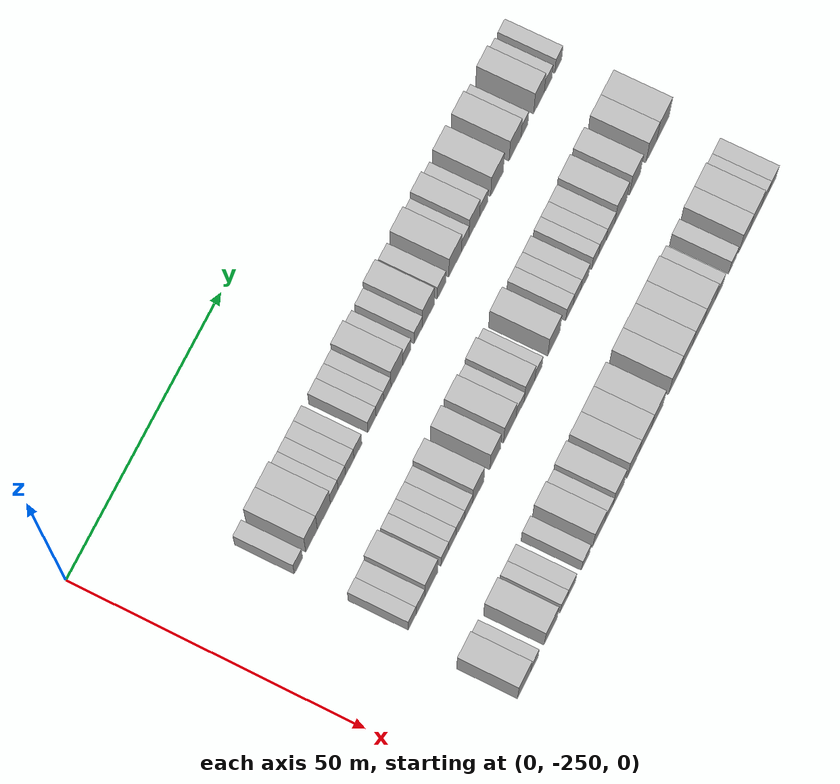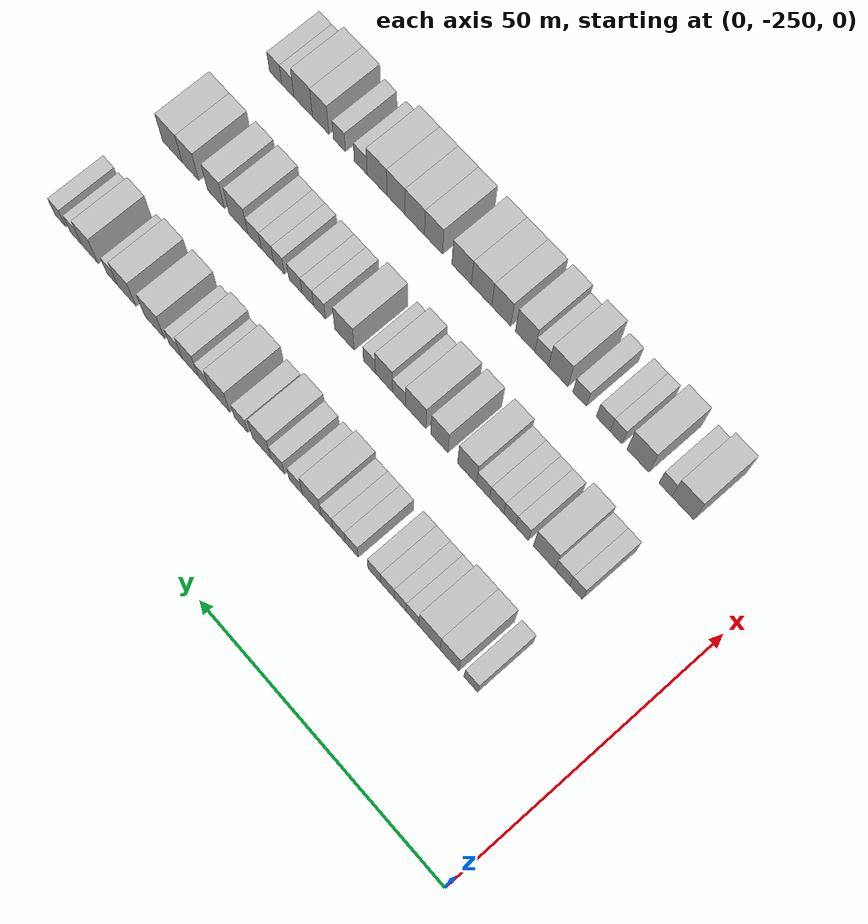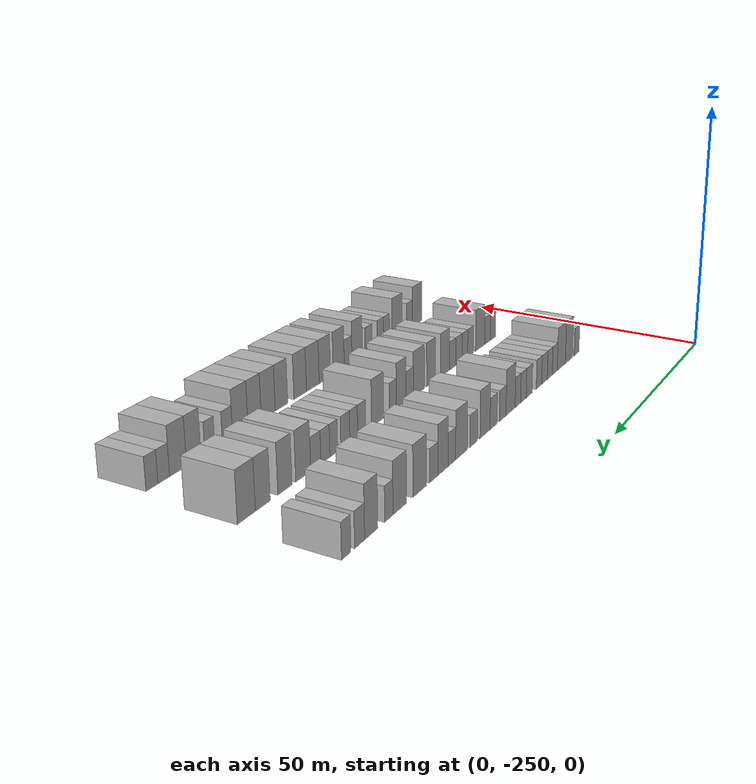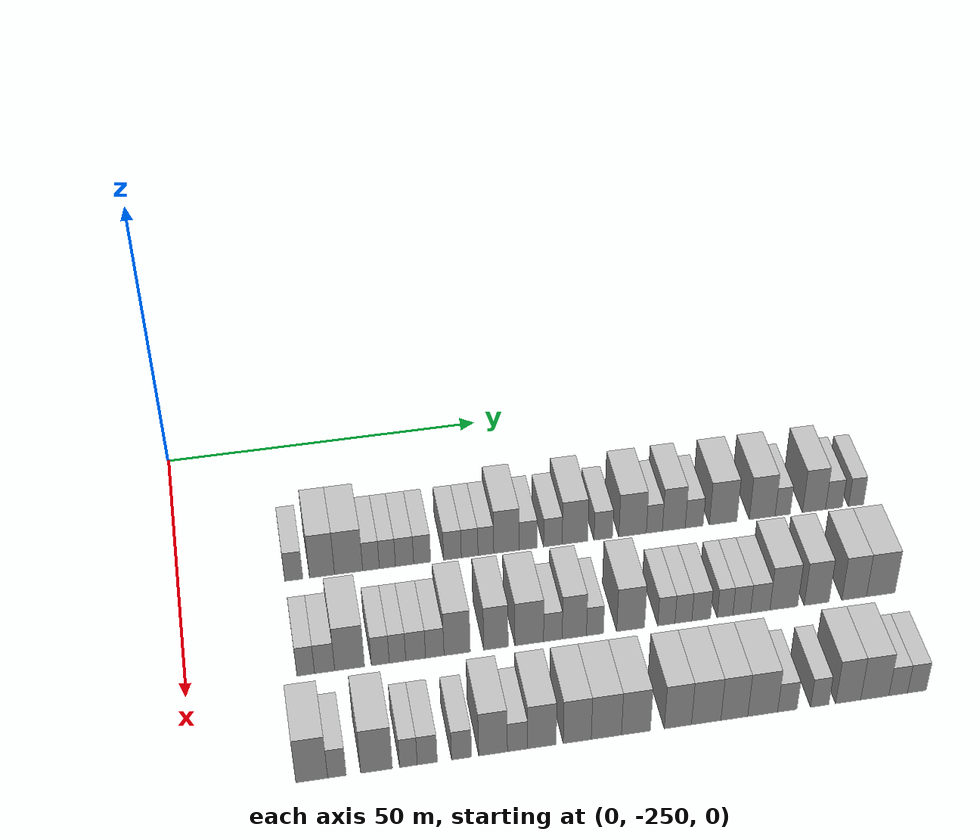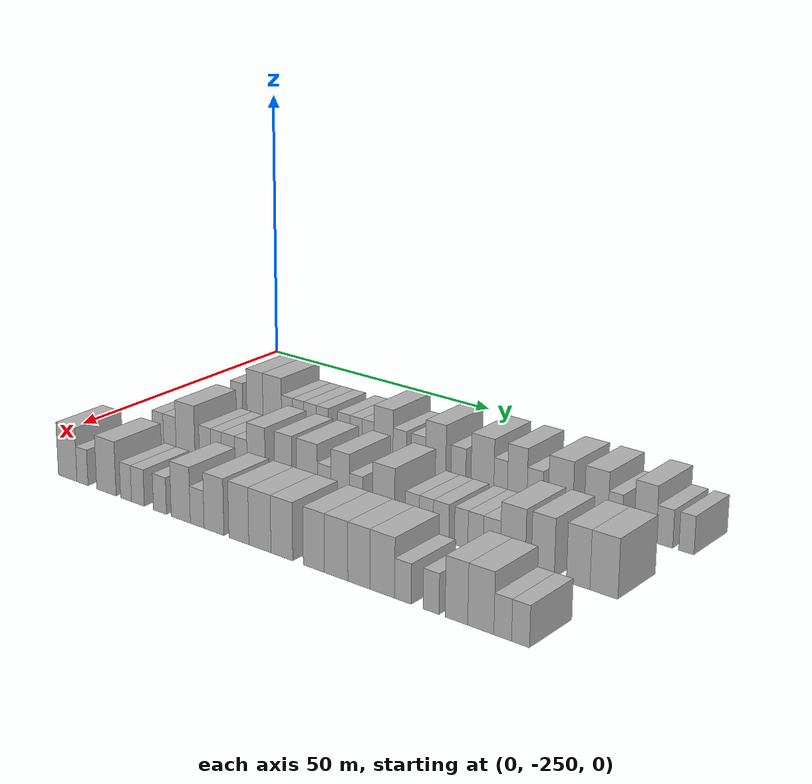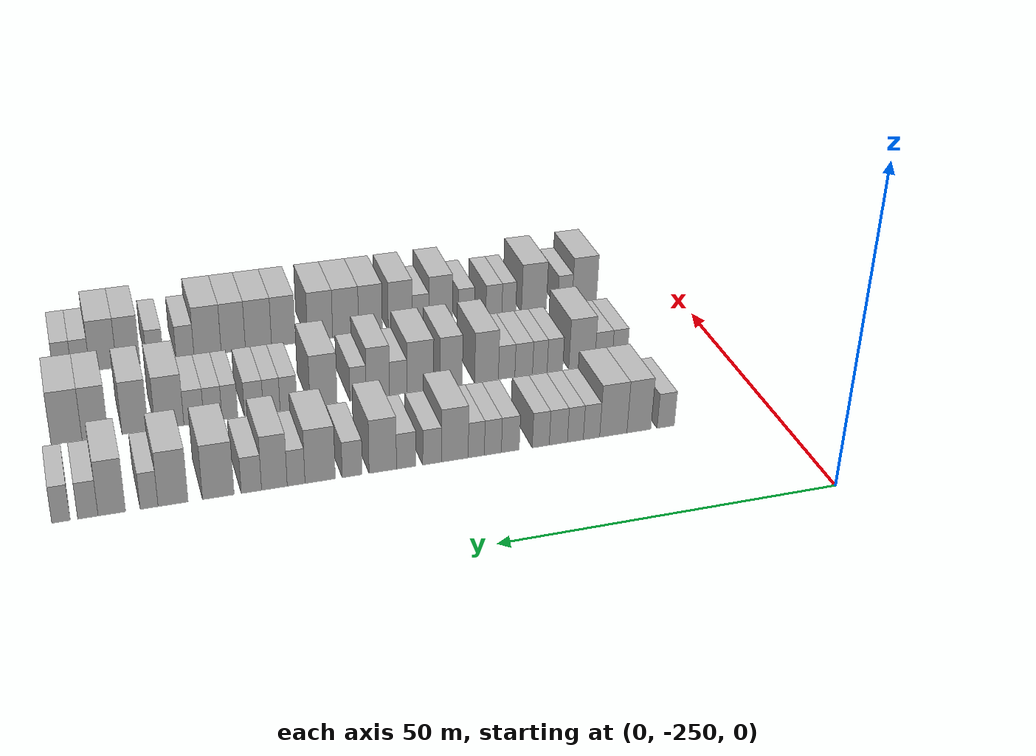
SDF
<sdf version="1.6">
 <world name="default">
  <model name="building_1">
   <static>1</static>
   <pose>25.0000 -232.6231 0 0.000000 0.000000 0.000000</pose>
   <link name="link">
    <pose>0 0 3.00 0 0 0</pose>
    <collision name="collision"><geometry><box><size>10.0000 2.7538 6.0000</size></box></geometry></collision>
    <visual name="visual">
     <cast_shadows>0</cast_shadows>
     <geometry><box><size>10.0000 2.7538 6.0000</size></box></geometry>
     <material>
      <script>
       <uri>model://HANNAS_wall/materials/scripts</uri>
       <uri>model://HANNAS_wall/materials/textures</uri>
       <name>vrc/HANNAS_wall</name>
      </script>
     </material>
    </visual>
   </link>
  </model>
  <model name="building_2">
   <static>1</static>
   <pose>25.0000 -228.3459 0 0.000000 0.000000 0.000000</pose>
   <link name="link">
    <pose>0 0 4.50 0 0 0</pose>
    <collision name="collision"><geometry><box><size>10.0000 3.8005 9.0000</size></box></geometry></collision>
    <visual name="visual">
     <cast_shadows>0</cast_shadows>
     <geometry><box><size>10.0000 3.8005 9.0000</size></box></geometry>
     <material>
      <script>
       <uri>model://HANNAS_wall/materials/scripts</uri>
       <uri>model://HANNAS_wall/materials/textures</uri>
       <name>vrc/HANNAS_wall</name>
      </script>
     </material>
    </visual>
   </link>
  </model>
  <model name="building_3">
   <static>1</static>
   <pose>25.0000 -224.2984 0 0.000000 0.000000 0.000000</pose>
   <link name="link">
    <pose>0 0 4.50 0 0 0</pose>
    <collision name="collision"><geometry><box><size>10.0000 4.2945 9.0000</size></box></geometry></collision>
    <visual name="visual">
     <cast_shadows>0</cast_shadows>
     <geometry><box><size>10.0000 4.2945 9.0000</size></box></geometry>
     <material>
      <script>
       <uri>model://HANNAS_wall/materials/scripts</uri>
       <uri>model://HANNAS_wall/materials/textures</uri>
       <name>vrc/HANNAS_wall</name>
      </script>
     </material>
    </visual>
   </link>
  </model>
  <model name="building_4">
   <static>1</static>
   <pose>25.0000 -220.8704 0 0.000000 0.000000 0.000000</pose>
   <link name="link">
    <pose>0 0 3.00 0 0 0</pose>
    <collision name="collision"><geometry><box><size>10.0000 2.5615 6.0000</size></box></geometry></collision>
    <visual name="visual">
     <cast_shadows>0</cast_shadows>
     <geometry><box><size>10.0000 2.5615 6.0000</size></box></geometry>
     <material>
      <script>
       <uri>model://HANNAS_wall/materials/scripts</uri>
       <uri>model://HANNAS_wall/materials/textures</uri>
       <name>vrc/HANNAS_wall</name>
      </script>
     </material>
    </visual>
   </link>
  </model>
  <model name="building_5">
   <static>1</static>
   <pose>25.0000 -218.3513 0 0.000000 0.000000 0.000000</pose>
   <link name="link">
    <pose>0 0 3.00 0 0 0</pose>
    <collision name="collision"><geometry><box><size>10.0000 2.4766 6.0000</size></box></geometry></collision>
    <visual name="visual">
     <cast_shadows>0</cast_shadows>
     <geometry><box><size>10.0000 2.4766 6.0000</size></box></geometry>
     <material>
      <script>
       <uri>model://HANNAS_wall/materials/scripts</uri>
       <uri>model://HANNAS_wall/materials/textures</uri>
       <name>vrc/HANNAS_wall</name>
      </script>
     </material>
    </visual>
   </link>
  </model>
  <model name="building_6">
   <static>1</static>
   <pose>25.0000 -215.7096 0 0.000000 0.000000 0.000000</pose>
   <link name="link">
    <pose>0 0 3.00 0 0 0</pose>
    <collision name="collision"><geometry><box><size>10.0000 2.8069 6.0000</size></box></geometry></collision>
    <visual name="visual">
     <cast_shadows>0</cast_shadows>
     <geometry><box><size>10.0000 2.8069 6.0000</size></box></geometry>
     <material>
      <script>
       <uri>model://HANNAS_wall/materials/scripts</uri>
       <uri>model://HANNAS_wall/materials/textures</uri>
       <name>vrc/HANNAS_wall</name>
      </script>
     </material>
    </visual>
   </link>
  </model>
  <model name="building_7">
   <static>1</static>
   <pose>25.0000 -212.9927 0 0.000000 0.000000 0.000000</pose>
   <link name="link">
    <pose>0 0 3.00 0 0 0</pose>
    <collision name="collision"><geometry><box><size>10.0000 2.6269 6.0000</size></box></geometry></collision>
    <visual name="visual">
     <cast_shadows>0</cast_shadows>
     <geometry><box><size>10.0000 2.6269 6.0000</size></box></geometry>
     <material>
      <script>
       <uri>model://HANNAS_wall/materials/scripts</uri>
       <uri>model://HANNAS_wall/materials/textures</uri>
       <name>vrc/HANNAS_wall</name>
      </script>
     </material>
    </visual>
   </link>
  </model>
  <model name="building_8">
   <static>1</static>
   <pose>25.0000 -208.3134 0 0.000000 0.000000 0.000000</pose>
   <link name="link">
    <pose>0 0 3.00 0 0 0</pose>
    <collision name="collision"><geometry><box><size>10.0000 2.7316 6.0000</size></box></geometry></collision>
    <visual name="visual">
     <cast_shadows>0</cast_shadows>
     <geometry><box><size>10.0000 2.7316 6.0000</size></box></geometry>
     <material>
      <script>
       <uri>model://HANNAS_wall/materials/scripts</uri>
       <uri>model://HANNAS_wall/materials/textures</uri>
       <name>vrc/HANNAS_wall</name>
      </script>
     </material>
    </visual>
   </link>
  </model>
  <model name="building_9">
   <static>1</static>
   <pose>25.0000 -205.6520 0 0.000000 0.000000 0.000000</pose>
   <link name="link">
    <pose>0 0 3.00 0 0 0</pose>
    <collision name="collision"><geometry><box><size>10.0000 2.5912 6.0000</size></box></geometry></collision>
    <visual name="visual">
     <cast_shadows>0</cast_shadows>
     <geometry><box><size>10.0000 2.5912 6.0000</size></box></geometry>
     <material>
      <script>
       <uri>model://HANNAS_wall/materials/scripts</uri>
       <uri>model://HANNAS_wall/materials/textures</uri>
       <name>vrc/HANNAS_wall</name>
      </script>
     </material>
    </visual>
   </link>
  </model>
  <model name="building_10">
   <static>1</static>
   <pose>25.0000 -203.1322 0 0.000000 0.000000 0.000000</pose>
   <link name="link">
    <pose>0 0 3.00 0 0 0</pose>
    <collision name="collision"><geometry><box><size>10.0000 2.4484 6.0000</size></box></geometry></collision>
    <visual name="visual">
     <cast_shadows>0</cast_shadows>
     <geometry><box><size>10.0000 2.4484 6.0000</size></box></geometry>
     <material>
      <script>
       <uri>model://HANNAS_wall/materials/scripts</uri>
       <uri>model://HANNAS_wall/materials/textures</uri>
       <name>vrc/HANNAS_wall</name>
      </script>
     </material>
    </visual>
   </link>
  </model>
  <model name="building_11">
   <static>1</static>
   <pose>25.0000 -199.9052 0 0.000000 0.000000 0.000000</pose>
   <link name="link">
    <pose>0 0 4.50 0 0 0</pose>
    <collision name="collision"><geometry><box><size>10.0000 4.0058 9.0000</size></box></geometry></collision>
    <visual name="visual">
     <cast_shadows>0</cast_shadows>
     <geometry><box><size>10.0000 4.0058 9.0000</size></box></geometry>
     <material>
      <script>
       <uri>model://HANNAS_wall/materials/scripts</uri>
       <uri>model://HANNAS_wall/materials/textures</uri>
       <name>vrc/HANNAS_wall</name>
      </script>
     </material>
    </visual>
   </link>
  </model>
  <model name="building_12">
   <static>1</static>
   <pose>25.0000 -196.5103 0 0.000000 0.000000 0.000000</pose>
   <link name="link">
    <pose>0 0 3.00 0 0 0</pose>
    <collision name="collision"><geometry><box><size>10.0000 2.7839 6.0000</size></box></geometry></collision>
    <visual name="visual">
     <cast_shadows>0</cast_shadows>
     <geometry><box><size>10.0000 2.7839 6.0000</size></box></geometry>
     <material>
      <script>
       <uri>model://HANNAS_wall/materials/scripts</uri>
       <uri>model://HANNAS_wall/materials/textures</uri>
       <name>vrc/HANNAS_wall</name>
      </script>
     </material>
    </visual>
   </link>
  </model>
  <model name="building_13">
   <static>1</static>
   <pose>25.0000 -192.6631 0 0.000000 0.000000 0.000000</pose>
   <link name="link">
    <pose>0 0 3.00 0 0 0</pose>
    <collision name="collision"><geometry><box><size>10.0000 2.9105 6.0000</size></box></geometry></collision>
    <visual name="visual">
     <cast_shadows>0</cast_shadows>
     <geometry><box><size>10.0000 2.9105 6.0000</size></box></geometry>
     <material>
      <script>
       <uri>model://HANNAS_wall/materials/scripts</uri>
       <uri>model://HANNAS_wall/materials/textures</uri>
       <name>vrc/HANNAS_wall</name>
      </script>
     </material>
    </visual>
   </link>
  </model>
  <model name="building_14">
   <static>1</static>
   <pose>25.0000 -189.1998 0 0.000000 0.000000 0.000000</pose>
   <link name="link">
    <pose>0 0 4.50 0 0 0</pose>
    <collision name="collision"><geometry><box><size>10.0000 4.0162 9.0000</size></box></geometry></collision>
    <visual name="visual">
     <cast_shadows>0</cast_shadows>
     <geometry><box><size>10.0000 4.0162 9.0000</size></box></geometry>
     <material>
      <script>
       <uri>model://HANNAS_wall/materials/scripts</uri>
       <uri>model://HANNAS_wall/materials/textures</uri>
       <name>vrc/HANNAS_wall</name>
      </script>
     </material>
    </visual>
   </link>
  </model>
  <model name="building_15">
   <static>1</static>
   <pose>25.0000 -184.7301 0 0.000000 0.000000 0.000000</pose>
   <link name="link">
    <pose>0 0 3.00 0 0 0</pose>
    <collision name="collision"><geometry><box><size>10.0000 2.9231 6.0000</size></box></geometry></collision>
    <visual name="visual">
     <cast_shadows>0</cast_shadows>
     <geometry><box><size>10.0000 2.9231 6.0000</size></box></geometry>
     <material>
      <script>
       <uri>model://HANNAS_wall/materials/scripts</uri>
       <uri>model://HANNAS_wall/materials/textures</uri>
       <name>vrc/HANNAS_wall</name>
      </script>
     </material>
    </visual>
   </link>
  </model>
  <model name="building_16">
   <static>1</static>
   <pose>25.0000 -180.0820 0 0.000000 0.000000 0.000000</pose>
   <link name="link">
    <pose>0 0 4.50 0 0 0</pose>
    <collision name="collision"><geometry><box><size>10.0000 4.3730 9.0000</size></box></geometry></collision>
    <visual name="visual">
     <cast_shadows>0</cast_shadows>
     <geometry><box><size>10.0000 4.3730 9.0000</size></box></geometry>
     <material>
      <script>
       <uri>model://HANNAS_wall/materials/scripts</uri>
       <uri>model://HANNAS_wall/materials/textures</uri>
       <name>vrc/HANNAS_wall</name>
      </script>
     </material>
    </visual>
   </link>
  </model>
  <model name="building_17">
   <static>1</static>
   <pose>25.0000 -176.6190 0 0.000000 0.000000 0.000000</pose>
   <link name="link">
    <pose>0 0 3.00 0 0 0</pose>
    <collision name="collision"><geometry><box><size>10.0000 2.5530 6.0000</size></box></geometry></collision>
    <visual name="visual">
     <cast_shadows>0</cast_shadows>
     <geometry><box><size>10.0000 2.5530 6.0000</size></box></geometry>
     <material>
      <script>
       <uri>model://HANNAS_wall/materials/scripts</uri>
       <uri>model://HANNAS_wall/materials/textures</uri>
       <name>vrc/HANNAS_wall</name>
      </script>
     </material>
    </visual>
   </link>
  </model>
  <model name="building_18">
   <static>1</static>
   <pose>25.0000 -173.5140 0 0.000000 0.000000 0.000000</pose>
   <link name="link">
    <pose>0 0 4.50 0 0 0</pose>
    <collision name="collision"><geometry><box><size>10.0000 3.6569 9.0000</size></box></geometry></collision>
    <visual name="visual">
     <cast_shadows>0</cast_shadows>
     <geometry><box><size>10.0000 3.6569 9.0000</size></box></geometry>
     <material>
      <script>
       <uri>model://HANNAS_wall/materials/scripts</uri>
       <uri>model://HANNAS_wall/materials/textures</uri>
       <name>vrc/HANNAS_wall</name>
      </script>
     </material>
    </visual>
   </link>
  </model>
  <model name="building_19">
   <static>1</static>
   <pose>25.0000 -170.2502 0 0.000000 0.000000 0.000000</pose>
   <link name="link">
    <pose>0 0 3.00 0 0 0</pose>
    <collision name="collision"><geometry><box><size>10.0000 2.8706 6.0000</size></box></geometry></collision>
    <visual name="visual">
     <cast_shadows>0</cast_shadows>
     <geometry><box><size>10.0000 2.8706 6.0000</size></box></geometry>
     <material>
      <script>
       <uri>model://HANNAS_wall/materials/scripts</uri>
       <uri>model://HANNAS_wall/materials/textures</uri>
       <name>vrc/HANNAS_wall</name>
      </script>
     </material>
    </visual>
   </link>
  </model>
  <model name="building_20">
   <static>1</static>
   <pose>25.0000 -165.5959 0 0.000000 0.000000 0.000000</pose>
   <link name="link">
    <pose>0 0 4.50 0 0 0</pose>
    <collision name="collision"><geometry><box><size>10.0000 4.4382 9.0000</size></box></geometry></collision>
    <visual name="visual">
     <cast_shadows>0</cast_shadows>
     <geometry><box><size>10.0000 4.4382 9.0000</size></box></geometry>
     <material>
      <script>
       <uri>model://HANNAS_wall/materials/scripts</uri>
       <uri>model://HANNAS_wall/materials/textures</uri>
       <name>vrc/HANNAS_wall</name>
      </script>
     </material>
    </visual>
   </link>
  </model>
  <model name="building_21">
   <static>1</static>
   <pose>25.0000 -159.2949 0 0.000000 0.000000 0.000000</pose>
   <link name="link">
    <pose>0 0 4.50 0 0 0</pose>
    <collision name="collision"><geometry><box><size>10.0000 4.1638 9.0000</size></box></geometry></collision>
    <visual name="visual">
     <cast_shadows>0</cast_shadows>
     <geometry><box><size>10.0000 4.1638 9.0000</size></box></geometry>
     <material>
      <script>
       <uri>model://HANNAS_wall/materials/scripts</uri>
       <uri>model://HANNAS_wall/materials/textures</uri>
       <name>vrc/HANNAS_wall</name>
      </script>
     </material>
    </visual>
   </link>
  </model>
  <model name="building_22">
   <static>1</static>
   <pose>25.0000 -155.9854 0 0.000000 0.000000 0.000000</pose>
   <link name="link">
    <pose>0 0 3.00 0 0 0</pose>
    <collision name="collision"><geometry><box><size>10.0000 2.4551 6.0000</size></box></geometry></collision>
    <visual name="visual">
     <cast_shadows>0</cast_shadows>
     <geometry><box><size>10.0000 2.4551 6.0000</size></box></geometry>
     <material>
      <script>
       <uri>model://HANNAS_wall/materials/scripts</uri>
       <uri>model://HANNAS_wall/materials/textures</uri>
       <name>vrc/HANNAS_wall</name>
      </script>
     </material>
    </visual>
   </link>
  </model>
  <model name="building_23">
   <static>1</static>
   <pose>25.0000 -150.8840 0 0.000000 0.000000 0.000000</pose>
   <link name="link">
    <pose>0 0 4.50 0 0 0</pose>
    <collision name="collision"><geometry><box><size>10.0000 3.7478 9.0000</size></box></geometry></collision>
    <visual name="visual">
     <cast_shadows>0</cast_shadows>
     <geometry><box><size>10.0000 3.7478 9.0000</size></box></geometry>
     <material>
      <script>
       <uri>model://HANNAS_wall/materials/scripts</uri>
       <uri>model://HANNAS_wall/materials/textures</uri>
       <name>vrc/HANNAS_wall</name>
      </script>
     </material>
    </visual>
   </link>
  </model>
  <model name="building_24">
   <static>1</static>
   <pose>25.0000 -147.6356 0 0.000000 0.000000 0.000000</pose>
   <link name="link">
    <pose>0 0 3.00 0 0 0</pose>
    <collision name="collision"><geometry><box><size>10.0000 2.7489 6.0000</size></box></geometry></collision>
    <visual name="visual">
     <cast_shadows>0</cast_shadows>
     <geometry><box><size>10.0000 2.7489 6.0000</size></box></geometry>
     <material>
      <script>
       <uri>model://HANNAS_wall/materials/scripts</uri>
       <uri>model://HANNAS_wall/materials/textures</uri>
       <name>vrc/HANNAS_wall</name>
      </script>
     </material>
    </visual>
   </link>
  </model>
  <model name="building_25">
   <static>1</static>
   <pose>25.0000 -144.0206 0 0.000000 0.000000 0.000000</pose>
   <link name="link">
    <pose>0 0 3.00 0 0 0</pose>
    <collision name="collision"><geometry><box><size>10.0000 2.4812 6.0000</size></box></geometry></collision>
    <visual name="visual">
     <cast_shadows>0</cast_shadows>
     <geometry><box><size>10.0000 2.4812 6.0000</size></box></geometry>
     <material>
      <script>
       <uri>model://HANNAS_wall/materials/scripts</uri>
       <uri>model://HANNAS_wall/materials/textures</uri>
       <name>vrc/HANNAS_wall</name>
      </script>
     </material>
    </visual>
   </link>
  </model>
  <model name="building_117">
   <static>1</static>
   <pose>44.0000 -232.7240 0 0.000000 0.000000 0.000000</pose>
   <link name="link">
    <pose>0 0 3.00 0 0 0</pose>
    <collision name="collision"><geometry><box><size>10.0000 2.5520 6.0000</size></box></geometry></collision>
    <visual name="visual">
     <cast_shadows>0</cast_shadows>
     <geometry><box><size>10.0000 2.5520 6.0000</size></box></geometry>
     <material>
      <script>
       <uri>model://HANNAS_wall/materials/scripts</uri>
       <uri>model://HANNAS_wall/materials/textures</uri>
       <name>vrc/HANNAS_wall</name>
      </script>
     </material>
    </visual>
   </link>
  </model>
  <model name="building_118">
   <static>1</static>
   <pose>44.0000 -229.9911 0 0.000000 0.000000 0.000000</pose>
   <link name="link">
    <pose>0 0 3.00 0 0 0</pose>
    <collision name="collision"><geometry><box><size>10.0000 2.9139 6.0000</size></box></geometry></collision>
    <visual name="visual">
     <cast_shadows>0</cast_shadows>
     <geometry><box><size>10.0000 2.9139 6.0000</size></box></geometry>
     <material>
      <script>
       <uri>model://HANNAS_wall/materials/scripts</uri>
       <uri>model://HANNAS_wall/materials/textures</uri>
       <name>vrc/HANNAS_wall</name>
      </script>
     </material>
    </visual>
   </link>
  </model>
  <model name="building_119">
   <static>1</static>
   <pose>44.0000 -226.3574 0 0.000000 0.000000 0.000000</pose>
   <link name="link">
    <pose>0 0 4.50 0 0 0</pose>
    <collision name="collision"><geometry><box><size>10.0000 4.3535 9.0000</size></box></geometry></collision>
    <visual name="visual">
     <cast_shadows>0</cast_shadows>
     <geometry><box><size>10.0000 4.3535 9.0000</size></box></geometry>
     <material>
      <script>
       <uri>model://HANNAS_wall/materials/scripts</uri>
       <uri>model://HANNAS_wall/materials/textures</uri>
       <name>vrc/HANNAS_wall</name>
      </script>
     </material>
    </visual>
   </link>
  </model>
  <model name="building_120">
   <static>1</static>
   <pose>44.0000 -221.8777 0 0.000000 0.000000 0.000000</pose>
   <link name="link">
    <pose>0 0 3.00 0 0 0</pose>
    <collision name="collision"><geometry><box><size>10.0000 2.6058 6.0000</size></box></geometry></collision>
    <visual name="visual">
     <cast_shadows>0</cast_shadows>
     <geometry><box><size>10.0000 2.6058 6.0000</size></box></geometry>
     <material>
      <script>
       <uri>model://HANNAS_wall/materials/scripts</uri>
       <uri>model://HANNAS_wall/materials/textures</uri>
       <name>vrc/HANNAS_wall</name>
      </script>
     </material>
    </visual>
   </link>
  </model>
  <model name="building_121">
   <static>1</static>
   <pose>44.0000 -219.3653 0 0.000000 0.000000 0.000000</pose>
   <link name="link">
    <pose>0 0 3.00 0 0 0</pose>
    <collision name="collision"><geometry><box><size>10.0000 2.4190 6.0000</size></box></geometry></collision>
    <visual name="visual">
     <cast_shadows>0</cast_shadows>
     <geometry><box><size>10.0000 2.4190 6.0000</size></box></geometry>
     <material>
      <script>
       <uri>model://HANNAS_wall/materials/scripts</uri>
       <uri>model://HANNAS_wall/materials/textures</uri>
       <name>vrc/HANNAS_wall</name>
      </script>
     </material>
    </visual>
   </link>
  </model>
  <model name="building_122">
   <static>1</static>
   <pose>44.0000 -216.6997 0 0.000000 0.000000 0.000000</pose>
   <link name="link">
    <pose>0 0 3.00 0 0 0</pose>
    <collision name="collision"><geometry><box><size>10.0000 2.9122 6.0000</size></box></geometry></collision>
    <visual name="visual">
     <cast_shadows>0</cast_shadows>
     <geometry><box><size>10.0000 2.9122 6.0000</size></box></geometry>
     <material>
      <script>
       <uri>model://HANNAS_wall/materials/scripts</uri>
       <uri>model://HANNAS_wall/materials/textures</uri>
       <name>vrc/HANNAS_wall</name>
      </script>
     </material>
    </visual>
   </link>
  </model>
  <model name="building_123">
   <static>1</static>
   <pose>44.0000 -213.8879 0 0.000000 0.000000 0.000000</pose>
   <link name="link">
    <pose>0 0 3.00 0 0 0</pose>
    <collision name="collision"><geometry><box><size>10.0000 2.7113 6.0000</size></box></geometry></collision>
    <visual name="visual">
     <cast_shadows>0</cast_shadows>
     <geometry><box><size>10.0000 2.7113 6.0000</size></box></geometry>
     <material>
      <script>
       <uri>model://HANNAS_wall/materials/scripts</uri>
       <uri>model://HANNAS_wall/materials/textures</uri>
       <name>vrc/HANNAS_wall</name>
      </script>
     </material>
    </visual>
   </link>
  </model>
  <model name="building_124">
   <static>1</static>
   <pose>44.0000 -210.5912 0 0.000000 0.000000 0.000000</pose>
   <link name="link">
    <pose>0 0 4.50 0 0 0</pose>
    <collision name="collision"><geometry><box><size>10.0000 3.8821 9.0000</size></box></geometry></collision>
    <visual name="visual">
     <cast_shadows>0</cast_shadows>
     <geometry><box><size>10.0000 3.8821 9.0000</size></box></geometry>
     <material>
      <script>
       <uri>model://HANNAS_wall/materials/scripts</uri>
       <uri>model://HANNAS_wall/materials/textures</uri>
       <name>vrc/HANNAS_wall</name>
      </script>
     </material>
    </visual>
   </link>
  </model>
  <model name="building_125">
   <static>1</static>
   <pose>44.0000 -204.8401 0 0.000000 0.000000 0.000000</pose>
   <link name="link">
    <pose>0 0 4.50 0 0 0</pose>
    <collision name="collision"><geometry><box><size>10.0000 3.6200 9.0000</size></box></geometry></collision>
    <visual name="visual">
     <cast_shadows>0</cast_shadows>
     <geometry><box><size>10.0000 3.6200 9.0000</size></box></geometry>
     <material>
      <script>
       <uri>model://HANNAS_wall/materials/scripts</uri>
       <uri>model://HANNAS_wall/materials/textures</uri>
       <name>vrc/HANNAS_wall</name>
      </script>
     </material>
    </visual>
   </link>
  </model>
  <model name="building_126">
   <static>1</static>
   <pose>44.0000 -199.8976 0 0.000000 0.000000 0.000000</pose>
   <link name="link">
    <pose>0 0 4.50 0 0 0</pose>
    <collision name="collision"><geometry><box><size>10.0000 4.2650 9.0000</size></box></geometry></collision>
    <visual name="visual">
     <cast_shadows>0</cast_shadows>
     <geometry><box><size>10.0000 4.2650 9.0000</size></box></geometry>
     <material>
      <script>
       <uri>model://HANNAS_wall/materials/scripts</uri>
       <uri>model://HANNAS_wall/materials/textures</uri>
       <name>vrc/HANNAS_wall</name>
      </script>
     </material>
    </visual>
   </link>
  </model>
  <model name="building_127">
   <static>1</static>
   <pose>44.0000 -196.3731 0 0.000000 0.000000 0.000000</pose>
   <link name="link">
    <pose>0 0 3.00 0 0 0</pose>
    <collision name="collision"><geometry><box><size>10.0000 2.7841 6.0000</size></box></geometry></collision>
    <visual name="visual">
     <cast_shadows>0</cast_shadows>
     <geometry><box><size>10.0000 2.7841 6.0000</size></box></geometry>
     <material>
      <script>
       <uri>model://HANNAS_wall/materials/scripts</uri>
       <uri>model://HANNAS_wall/materials/textures</uri>
       <name>vrc/HANNAS_wall</name>
      </script>
     </material>
    </visual>
   </link>
  </model>
  <model name="building_128">
   <static>1</static>
   <pose>44.0000 -193.1592 0 0.000000 0.000000 0.000000</pose>
   <link name="link">
    <pose>0 0 4.50 0 0 0</pose>
    <collision name="collision"><geometry><box><size>10.0000 3.6438 9.0000</size></box></geometry></collision>
    <visual name="visual">
     <cast_shadows>0</cast_shadows>
     <geometry><box><size>10.0000 3.6438 9.0000</size></box></geometry>
     <material>
      <script>
       <uri>model://HANNAS_wall/materials/scripts</uri>
       <uri>model://HANNAS_wall/materials/textures</uri>
       <name>vrc/HANNAS_wall</name>
      </script>
     </material>
    </visual>
   </link>
  </model>
  <model name="building_129">
   <static>1</static>
   <pose>44.0000 -190.0579 0 0.000000 0.000000 0.000000</pose>
   <link name="link">
    <pose>0 0 3.00 0 0 0</pose>
    <collision name="collision"><geometry><box><size>10.0000 2.5587 6.0000</size></box></geometry></collision>
    <visual name="visual">
     <cast_shadows>0</cast_shadows>
     <geometry><box><size>10.0000 2.5587 6.0000</size></box></geometry>
     <material>
      <script>
       <uri>model://HANNAS_wall/materials/scripts</uri>
       <uri>model://HANNAS_wall/materials/textures</uri>
       <name>vrc/HANNAS_wall</name>
      </script>
     </material>
    </visual>
   </link>
  </model>
  <model name="building_130">
   <static>1</static>
   <pose>44.0000 -184.6688 0 0.000000 0.000000 0.000000</pose>
   <link name="link">
    <pose>0 0 4.50 0 0 0</pose>
    <collision name="collision"><geometry><box><size>10.0000 4.2195 9.0000</size></box></geometry></collision>
    <visual name="visual">
     <cast_shadows>0</cast_shadows>
     <geometry><box><size>10.0000 4.2195 9.0000</size></box></geometry>
     <material>
      <script>
       <uri>model://HANNAS_wall/materials/scripts</uri>
       <uri>model://HANNAS_wall/materials/textures</uri>
       <name>vrc/HANNAS_wall</name>
      </script>
     </material>
    </visual>
   </link>
  </model>
  <model name="building_131">
   <static>1</static>
   <pose>44.0000 -179.2508 0 0.000000 0.000000 0.000000</pose>
   <link name="link">
    <pose>0 0 3.00 0 0 0</pose>
    <collision name="collision"><geometry><box><size>10.0000 2.6164 6.0000</size></box></geometry></collision>
    <visual name="visual">
     <cast_shadows>0</cast_shadows>
     <geometry><box><size>10.0000 2.6164 6.0000</size></box></geometry>
     <material>
      <script>
       <uri>model://HANNAS_wall/materials/scripts</uri>
       <uri>model://HANNAS_wall/materials/textures</uri>
       <name>vrc/HANNAS_wall</name>
      </script>
     </material>
    </visual>
   </link>
  </model>
  <model name="building_132">
   <static>1</static>
   <pose>44.0000 -176.6576 0 0.000000 0.000000 0.000000</pose>
   <link name="link">
    <pose>0 0 3.00 0 0 0</pose>
    <collision name="collision"><geometry><box><size>10.0000 2.5701 6.0000</size></box></geometry></collision>
    <visual name="visual">
     <cast_shadows>0</cast_shadows>
     <geometry><box><size>10.0000 2.5701 6.0000</size></box></geometry>
     <material>
      <script>
       <uri>model://HANNAS_wall/materials/scripts</uri>
       <uri>model://HANNAS_wall/materials/textures</uri>
       <name>vrc/HANNAS_wall</name>
      </script>
     </material>
    </visual>
   </link>
  </model>
  <model name="building_133">
   <static>1</static>
   <pose>44.0000 -173.9402 0 0.000000 0.000000 0.000000</pose>
   <link name="link">
    <pose>0 0 3.00 0 0 0</pose>
    <collision name="collision"><geometry><box><size>10.0000 2.8646 6.0000</size></box></geometry></collision>
    <visual name="visual">
     <cast_shadows>0</cast_shadows>
     <geometry><box><size>10.0000 2.8646 6.0000</size></box></geometry>
     <material>
      <script>
       <uri>model://HANNAS_wall/materials/scripts</uri>
       <uri>model://HANNAS_wall/materials/textures</uri>
       <name>vrc/HANNAS_wall</name>
      </script>
     </material>
    </visual>
   </link>
  </model>
  <model name="building_134">
   <static>1</static>
   <pose>44.0000 -170.3053 0 0.000000 0.000000 0.000000</pose>
   <link name="link">
    <pose>0 0 3.00 0 0 0</pose>
    <collision name="collision"><geometry><box><size>10.0000 2.4052 6.0000</size></box></geometry></collision>
    <visual name="visual">
     <cast_shadows>0</cast_shadows>
     <geometry><box><size>10.0000 2.4052 6.0000</size></box></geometry>
     <material>
      <script>
       <uri>model://HANNAS_wall/materials/scripts</uri>
       <uri>model://HANNAS_wall/materials/textures</uri>
       <name>vrc/HANNAS_wall</name>
      </script>
     </material>
    </visual>
   </link>
  </model>
  <model name="building_135">
   <static>1</static>
   <pose>44.0000 -167.7431 0 0.000000 0.000000 0.000000</pose>
   <link name="link">
    <pose>0 0 3.00 0 0 0</pose>
    <collision name="collision"><geometry><box><size>10.0000 2.7192 6.0000</size></box></geometry></collision>
    <visual name="visual">
     <cast_shadows>0</cast_shadows>
     <geometry><box><size>10.0000 2.7192 6.0000</size></box></geometry>
     <material>
      <script>
       <uri>model://HANNAS_wall/materials/scripts</uri>
       <uri>model://HANNAS_wall/materials/textures</uri>
       <name>vrc/HANNAS_wall</name>
      </script>
     </material>
    </visual>
   </link>
  </model>
  <model name="building_136">
   <static>1</static>
   <pose>44.0000 -164.8868 0 0.000000 0.000000 0.000000</pose>
   <link name="link">
    <pose>0 0 3.00 0 0 0</pose>
    <collision name="collision"><geometry><box><size>10.0000 2.9934 6.0000</size></box></geometry></collision>
    <visual name="visual">
     <cast_shadows>0</cast_shadows>
     <geometry><box><size>10.0000 2.9934 6.0000</size></box></geometry>
     <material>
      <script>
       <uri>model://HANNAS_wall/materials/scripts</uri>
       <uri>model://HANNAS_wall/materials/textures</uri>
       <name>vrc/HANNAS_wall</name>
      </script>
     </material>
    </visual>
   </link>
  </model>
  <model name="building_137">
   <static>1</static>
   <pose>44.0000 -161.2432 0 0.000000 0.000000 0.000000</pose>
   <link name="link">
    <pose>0 0 4.50 0 0 0</pose>
    <collision name="collision"><geometry><box><size>10.0000 4.2937 9.0000</size></box></geometry></collision>
    <visual name="visual">
     <cast_shadows>0</cast_shadows>
     <geometry><box><size>10.0000 4.2937 9.0000</size></box></geometry>
     <material>
      <script>
       <uri>model://HANNAS_wall/materials/scripts</uri>
       <uri>model://HANNAS_wall/materials/textures</uri>
       <name>vrc/HANNAS_wall</name>
      </script>
     </material>
    </visual>
   </link>
  </model>
  <model name="building_138">
   <static>1</static>
   <pose>44.0000 -156.1596 0 0.000000 0.000000 0.000000</pose>
   <link name="link">
    <pose>0 0 4.50 0 0 0</pose>
    <collision name="collision"><geometry><box><size>10.0000 3.8735 9.0000</size></box></geometry></collision>
    <visual name="visual">
     <cast_shadows>0</cast_shadows>
     <geometry><box><size>10.0000 3.8735 9.0000</size></box></geometry>
     <material>
      <script>
       <uri>model://HANNAS_wall/materials/scripts</uri>
       <uri>model://HANNAS_wall/materials/textures</uri>
       <name>vrc/HANNAS_wall</name>
      </script>
     </material>
    </visual>
   </link>
  </model>
  <model name="building_139">
   <static>1</static>
   <pose>44.0000 -150.3092 0 0.000000 0.000000 0.000000</pose>
   <link name="link">
    <pose>0 0 4.50 0 0 0</pose>
    <collision name="collision"><geometry><box><size>10.0000 3.8272 9.0000</size></box></geometry></collision>
    <visual name="visual">
     <cast_shadows>0</cast_shadows>
     <geometry><box><size>10.0000 3.8272 9.0000</size></box></geometry>
     <material>
      <script>
       <uri>model://HANNAS_wall/materials/scripts</uri>
       <uri>model://HANNAS_wall/materials/textures</uri>
       <name>vrc/HANNAS_wall</name>
      </script>
     </material>
    </visual>
   </link>
  </model>
  <model name="building_140">
   <static>1</static>
   <pose>44.0000 -146.1526 0 0.000000 0.000000 0.000000</pose>
   <link name="link">
    <pose>0 0 4.50 0 0 0</pose>
    <collision name="collision"><geometry><box><size>10.0000 4.4861 9.0000</size></box></geometry></collision>
    <visual name="visual">
     <cast_shadows>0</cast_shadows>
     <geometry><box><size>10.0000 4.4861 9.0000</size></box></geometry>
     <material>
      <script>
       <uri>model://HANNAS_wall/materials/scripts</uri>
       <uri>model://HANNAS_wall/materials/textures</uri>
       <name>vrc/HANNAS_wall</name>
      </script>
     </material>
    </visual>
   </link>
  </model>
  <model name="building_237">
   <static>1</static>
   <pose>63.0000 -233.8083 0 0.000000 0.000000 0.000000</pose>
   <link name="link">
    <pose>0 0 4.50 0 0 0</pose>
    <collision name="collision"><geometry><box><size>10.0000 4.3834 9.0000</size></box></geometry></collision>
    <visual name="visual">
     <cast_shadows>0</cast_shadows>
     <geometry><box><size>10.0000 4.3834 9.0000</size></box></geometry>
     <material>
      <script>
       <uri>model://HANNAS_wall/materials/scripts</uri>
       <uri>model://HANNAS_wall/materials/textures</uri>
       <name>vrc/HANNAS_wall</name>
      </script>
     </material>
    </visual>
   </link>
  </model>
  <model name="building_238">
   <static>1</static>
   <pose>63.0000 -230.3334 0 0.000000 0.000000 0.000000</pose>
   <link name="link">
    <pose>0 0 3.00 0 0 0</pose>
    <collision name="collision"><geometry><box><size>10.0000 2.5664 6.0000</size></box></geometry></collision>
    <visual name="visual">
     <cast_shadows>0</cast_shadows>
     <geometry><box><size>10.0000 2.5664 6.0000</size></box></geometry>
     <material>
      <script>
       <uri>model://HANNAS_wall/materials/scripts</uri>
       <uri>model://HANNAS_wall/materials/textures</uri>
       <name>vrc/HANNAS_wall</name>
      </script>
     </material>
    </visual>
   </link>
  </model>
  <model name="building_239">
   <static>1</static>
   <pose>63.0000 -224.8438 0 0.000000 0.000000 0.000000</pose>
   <link name="link">
    <pose>0 0 4.50 0 0 0</pose>
    <collision name="collision"><geometry><box><size>10.0000 4.4128 9.0000</size></box></geometry></collision>
    <visual name="visual">
     <cast_shadows>0</cast_shadows>
     <geometry><box><size>10.0000 4.4128 9.0000</size></box></geometry>
     <material>
      <script>
       <uri>model://HANNAS_wall/materials/scripts</uri>
       <uri>model://HANNAS_wall/materials/textures</uri>
       <name>vrc/HANNAS_wall</name>
      </script>
     </material>
    </visual>
   </link>
  </model>
  <model name="building_240">
   <static>1</static>
   <pose>63.0000 -220.4120 0 0.000000 0.000000 0.000000</pose>
   <link name="link">
    <pose>0 0 3.00 0 0 0</pose>
    <collision name="collision"><geometry><box><size>10.0000 2.4508 6.0000</size></box></geometry></collision>
    <visual name="visual">
     <cast_shadows>0</cast_shadows>
     <geometry><box><size>10.0000 2.4508 6.0000</size></box></geometry>
     <material>
      <script>
       <uri>model://HANNAS_wall/materials/scripts</uri>
       <uri>model://HANNAS_wall/materials/textures</uri>
       <name>vrc/HANNAS_wall</name>
      </script>
     </material>
    </visual>
   </link>
  </model>
  <model name="building_241">
   <static>1</static>
   <pose>63.0000 -217.7833 0 0.000000 0.000000 0.000000</pose>
   <link name="link">
    <pose>0 0 3.00 0 0 0</pose>
    <collision name="collision"><geometry><box><size>10.0000 2.8065 6.0000</size></box></geometry></collision>
    <visual name="visual">
     <cast_shadows>0</cast_shadows>
     <geometry><box><size>10.0000 2.8065 6.0000</size></box></geometry>
     <material>
      <script>
       <uri>model://HANNAS_wall/materials/scripts</uri>
       <uri>model://HANNAS_wall/materials/textures</uri>
       <name>vrc/HANNAS_wall</name>
      </script>
     </material>
    </visual>
   </link>
  </model>
  <model name="building_242">
   <static>1</static>
   <pose>63.0000 -212.9721 0 0.000000 0.000000 0.000000</pose>
   <link name="link">
    <pose>0 0 3.00 0 0 0</pose>
    <collision name="collision"><geometry><box><size>10.0000 2.8160 6.0000</size></box></geometry></collision>
    <visual name="visual">
     <cast_shadows>0</cast_shadows>
     <geometry><box><size>10.0000 2.8160 6.0000</size></box></geometry>
     <material>
      <script>
       <uri>model://HANNAS_wall/materials/scripts</uri>
       <uri>model://HANNAS_wall/materials/textures</uri>
       <name>vrc/HANNAS_wall</name>
      </script>
     </material>
    </visual>
   </link>
  </model>
  <model name="building_243">
   <static>1</static>
   <pose>63.0000 -208.5436 0 0.000000 0.000000 0.000000</pose>
   <link name="link">
    <pose>0 0 4.50 0 0 0</pose>
    <collision name="collision"><geometry><box><size>10.0000 4.0408 9.0000</size></box></geometry></collision>
    <visual name="visual">
     <cast_shadows>0</cast_shadows>
     <geometry><box><size>10.0000 4.0408 9.0000</size></box></geometry>
     <material>
      <script>
       <uri>model://HANNAS_wall/materials/scripts</uri>
       <uri>model://HANNAS_wall/materials/textures</uri>
       <name>vrc/HANNAS_wall</name>
      </script>
     </material>
    </visual>
   </link>
  </model>
  <model name="building_244">
   <static>1</static>
   <pose>63.0000 -205.0881 0 0.000000 0.000000 0.000000</pose>
   <link name="link">
    <pose>0 0 3.00 0 0 0</pose>
    <collision name="collision"><geometry><box><size>10.0000 2.8703 6.0000</size></box></geometry></collision>
    <visual name="visual">
     <cast_shadows>0</cast_shadows>
     <geometry><box><size>10.0000 2.8703 6.0000</size></box></geometry>
     <material>
      <script>
       <uri>model://HANNAS_wall/materials/scripts</uri>
       <uri>model://HANNAS_wall/materials/textures</uri>
       <name>vrc/HANNAS_wall</name>
      </script>
     </material>
    </visual>
   </link>
  </model>
  <model name="building_245">
   <static>1</static>
   <pose>63.0000 -201.6279 0 0.000000 0.000000 0.000000</pose>
   <link name="link">
    <pose>0 0 4.50 0 0 0</pose>
    <collision name="collision"><geometry><box><size>10.0000 4.0502 9.0000</size></box></geometry></collision>
    <visual name="visual">
     <cast_shadows>0</cast_shadows>
     <geometry><box><size>10.0000 4.0502 9.0000</size></box></geometry>
     <material>
      <script>
       <uri>model://HANNAS_wall/materials/scripts</uri>
       <uri>model://HANNAS_wall/materials/textures</uri>
       <name>vrc/HANNAS_wall</name>
      </script>
     </material>
    </visual>
   </link>
  </model>
  <model name="building_246">
   <static>1</static>
   <pose>63.0000 -196.6080 0 0.000000 0.000000 0.000000</pose>
   <link name="link">
    <pose>0 0 4.50 0 0 0</pose>
    <collision name="collision"><geometry><box><size>10.0000 3.9895 9.0000</size></box></geometry></collision>
    <visual name="visual">
     <cast_shadows>0</cast_shadows>
     <geometry><box><size>10.0000 3.9895 9.0000</size></box></geometry>
     <material>
      <script>
       <uri>model://HANNAS_wall/materials/scripts</uri>
       <uri>model://HANNAS_wall/materials/textures</uri>
       <name>vrc/HANNAS_wall</name>
      </script>
     </material>
    </visual>
   </link>
  </model>
  <model name="building_247">
   <static>1</static>
   <pose>63.0000 -192.4459 0 0.000000 0.000000 0.000000</pose>
   <link name="link">
    <pose>0 0 4.50 0 0 0</pose>
    <collision name="collision"><geometry><box><size>10.0000 4.3347 9.0000</size></box></geometry></collision>
    <visual name="visual">
     <cast_shadows>0</cast_shadows>
     <geometry><box><size>10.0000 4.3347 9.0000</size></box></geometry>
     <material>
      <script>
       <uri>model://HANNAS_wall/materials/scripts</uri>
       <uri>model://HANNAS_wall/materials/textures</uri>
       <name>vrc/HANNAS_wall</name>
      </script>
     </material>
    </visual>
   </link>
  </model>
  <model name="building_248">
   <static>1</static>
   <pose>63.0000 -188.1931 0 0.000000 0.000000 0.000000</pose>
   <link name="link">
    <pose>0 0 4.50 0 0 0</pose>
    <collision name="collision"><geometry><box><size>10.0000 4.1708 9.0000</size></box></geometry></collision>
    <visual name="visual">
     <cast_shadows>0</cast_shadows>
     <geometry><box><size>10.0000 4.1708 9.0000</size></box></geometry>
     <material>
      <script>
       <uri>model://HANNAS_wall/materials/scripts</uri>
       <uri>model://HANNAS_wall/materials/textures</uri>
       <name>vrc/HANNAS_wall</name>
      </script>
     </material>
    </visual>
   </link>
  </model>
  <model name="building_249">
   <static>1</static>
   <pose>63.0000 -182.1415 0 0.000000 0.000000 0.000000</pose>
   <link name="link">
    <pose>0 0 4.50 0 0 0</pose>
    <collision name="collision"><geometry><box><size>10.0000 3.9324 9.0000</size></box></geometry></collision>
    <visual name="visual">
     <cast_shadows>0</cast_shadows>
     <geometry><box><size>10.0000 3.9324 9.0000</size></box></geometry>
     <material>
      <script>
       <uri>model://HANNAS_wall/materials/scripts</uri>
       <uri>model://HANNAS_wall/materials/textures</uri>
       <name>vrc/HANNAS_wall</name>
      </script>
     </material>
    </visual>
   </link>
  </model>
  <model name="building_250">
   <static>1</static>
   <pose>63.0000 -178.0366 0 0.000000 0.000000 0.000000</pose>
   <link name="link">
    <pose>0 0 4.50 0 0 0</pose>
    <collision name="collision"><geometry><box><size>10.0000 4.2774 9.0000</size></box></geometry></collision>
    <visual name="visual">
     <cast_shadows>0</cast_shadows>
     <geometry><box><size>10.0000 4.2774 9.0000</size></box></geometry>
     <material>
      <script>
       <uri>model://HANNAS_wall/materials/scripts</uri>
       <uri>model://HANNAS_wall/materials/textures</uri>
       <name>vrc/HANNAS_wall</name>
      </script>
     </material>
    </visual>
   </link>
  </model>
  <model name="building_251">
   <static>1</static>
   <pose>63.0000 -173.9360 0 0.000000 0.000000 0.000000</pose>
   <link name="link">
    <pose>0 0 4.50 0 0 0</pose>
    <collision name="collision"><geometry><box><size>10.0000 3.9238 9.0000</size></box></geometry></collision>
    <visual name="visual">
     <cast_shadows>0</cast_shadows>
     <geometry><box><size>10.0000 3.9238 9.0000</size></box></geometry>
     <material>
      <script>
       <uri>model://HANNAS_wall/materials/scripts</uri>
       <uri>model://HANNAS_wall/materials/textures</uri>
       <name>vrc/HANNAS_wall</name>
      </script>
     </material>
    </visual>
   </link>
  </model>
  <model name="building_252">
   <static>1</static>
   <pose>63.0000 -169.7874 0 0.000000 0.000000 0.000000</pose>
   <link name="link">
    <pose>0 0 4.50 0 0 0</pose>
    <collision name="collision"><geometry><box><size>10.0000 4.3733 9.0000</size></box></geometry></collision>
    <visual name="visual">
     <cast_shadows>0</cast_shadows>
     <geometry><box><size>10.0000 4.3733 9.0000</size></box></geometry>
     <material>
      <script>
       <uri>model://HANNAS_wall/materials/scripts</uri>
       <uri>model://HANNAS_wall/materials/textures</uri>
       <name>vrc/HANNAS_wall</name>
      </script>
     </material>
    </visual>
   </link>
  </model>
  <model name="building_253">
   <static>1</static>
   <pose>63.0000 -166.1725 0 0.000000 0.000000 0.000000</pose>
   <link name="link">
    <pose>0 0 3.00 0 0 0</pose>
    <collision name="collision"><geometry><box><size>10.0000 2.8566 6.0000</size></box></geometry></collision>
    <visual name="visual">
     <cast_shadows>0</cast_shadows>
     <geometry><box><size>10.0000 2.8566 6.0000</size></box></geometry>
     <material>
      <script>
       <uri>model://HANNAS_wall/materials/scripts</uri>
       <uri>model://HANNAS_wall/materials/textures</uri>
       <name>vrc/HANNAS_wall</name>
      </script>
     </material>
    </visual>
   </link>
  </model>
  <model name="building_254">
   <static>1</static>
   <pose>63.0000 -161.3991 0 0.000000 0.000000 0.000000</pose>
   <link name="link">
    <pose>0 0 3.00 0 0 0</pose>
    <collision name="collision"><geometry><box><size>10.0000 2.6901 6.0000</size></box></geometry></collision>
    <visual name="visual">
     <cast_shadows>0</cast_shadows>
     <geometry><box><size>10.0000 2.6901 6.0000</size></box></geometry>
     <material>
      <script>
       <uri>model://HANNAS_wall/materials/scripts</uri>
       <uri>model://HANNAS_wall/materials/textures</uri>
       <name>vrc/HANNAS_wall</name>
      </script>
     </material>
    </visual>
   </link>
  </model>
  <model name="building_255">
   <static>1</static>
   <pose>63.0000 -157.1941 0 0.000000 0.000000 0.000000</pose>
   <link name="link">
    <pose>0 0 4.50 0 0 0</pose>
    <collision name="collision"><geometry><box><size>10.0000 3.7200 9.0000</size></box></geometry></collision>
    <visual name="visual">
     <cast_shadows>0</cast_shadows>
     <geometry><box><size>10.0000 3.7200 9.0000</size></box></geometry>
     <material>
      <script>
       <uri>model://HANNAS_wall/materials/scripts</uri>
       <uri>model://HANNAS_wall/materials/textures</uri>
       <name>vrc/HANNAS_wall</name>
      </script>
     </material>
    </visual>
   </link>
  </model>
  <model name="building_256">
   <static>1</static>
   <pose>63.0000 -153.2357 0 0.000000 0.000000 0.000000</pose>
   <link name="link">
    <pose>0 0 4.50 0 0 0</pose>
    <collision name="collision"><geometry><box><size>10.0000 4.1966 9.0000</size></box></geometry></collision>
    <visual name="visual">
     <cast_shadows>0</cast_shadows>
     <geometry><box><size>10.0000 4.1966 9.0000</size></box></geometry>
     <material>
      <script>
       <uri>model://HANNAS_wall/materials/scripts</uri>
       <uri>model://HANNAS_wall/materials/textures</uri>
       <name>vrc/HANNAS_wall</name>
      </script>
     </material>
    </visual>
   </link>
  </model>
  <model name="building_257">
   <static>1</static>
   <pose>63.0000 -149.7373 0 0.000000 0.000000 0.000000</pose>
   <link name="link">
    <pose>0 0 3.00 0 0 0</pose>
    <collision name="collision"><geometry><box><size>10.0000 2.8002 6.0000</size></box></geometry></collision>
    <visual name="visual">
     <cast_shadows>0</cast_shadows>
     <geometry><box><size>10.0000 2.8002 6.0000</size></box></geometry>
     <material>
      <script>
       <uri>model://HANNAS_wall/materials/scripts</uri>
       <uri>model://HANNAS_wall/materials/textures</uri>
       <name>vrc/HANNAS_wall</name>
      </script>
     </material>
    </visual>
   </link>
  </model>
  <model name="building_258">
   <static>1</static>
   <pose>63.0000 -146.9364 0 0.000000 0.000000 0.000000</pose>
   <link name="link">
    <pose>0 0 3.00 0 0 0</pose>
    <collision name="collision"><geometry><box><size>10.0000 2.8016 6.0000</size></box></geometry></collision>
    <visual name="visual">
     <cast_shadows>0</cast_shadows>
     <geometry><box><size>10.0000 2.8016 6.0000</size></box></geometry>
     <material>
      <script>
       <uri>model://HANNAS_wall/materials/scripts</uri>
       <uri>model://HANNAS_wall/materials/textures</uri>
       <name>vrc/HANNAS_wall</name>
      </script>
     </material>
    </visual>
   </link>
  </model>
 </world>
</sdf>
